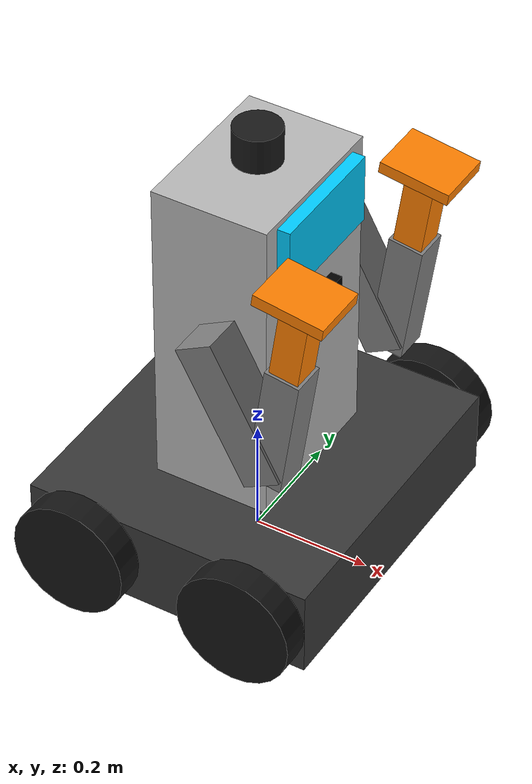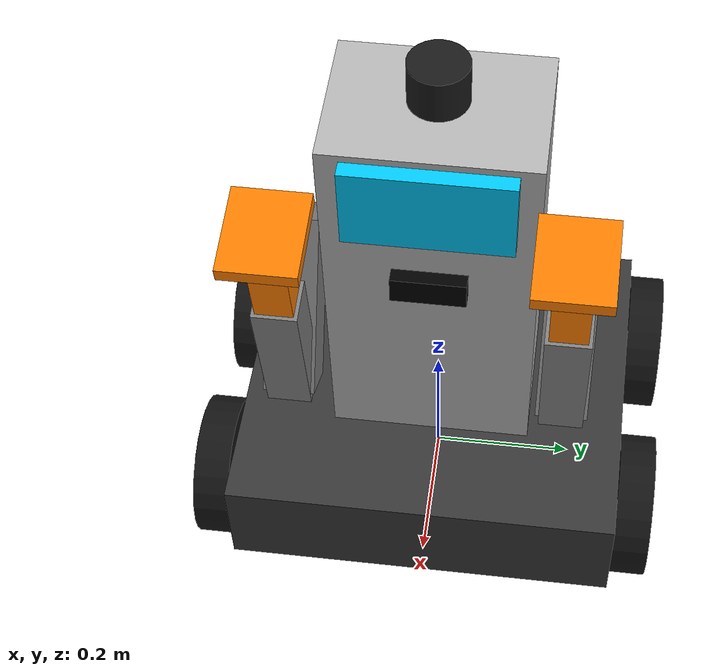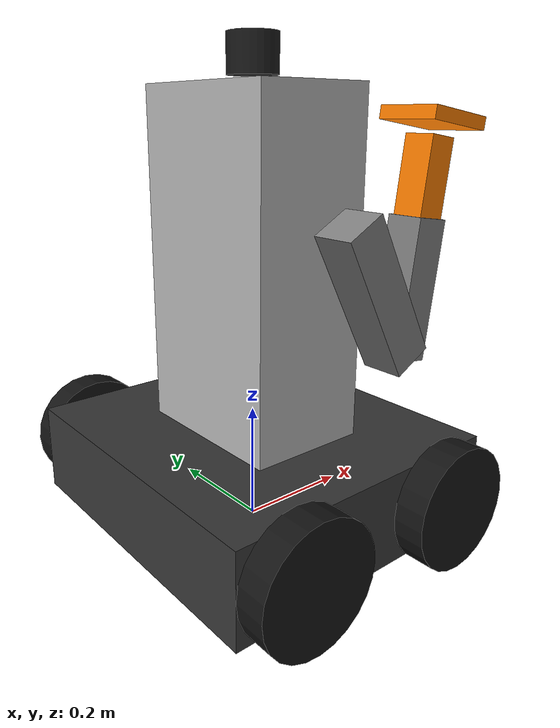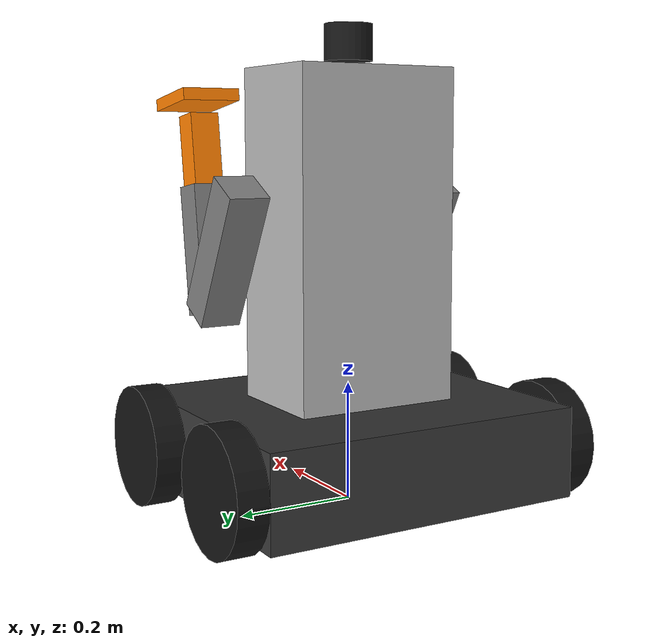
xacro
<?xml version="1.0"?>
<robot xmlns:xacro="http://www.ros.org/wiki/xacro" name="tidybot">

  <xacro:property name="PI" value="3.14159265359"/>

  <!-- ── Base ── -->
  <xacro:property name="base_length"  value="0.50"/>
  <xacro:property name="base_width"   value="0.55"/>
  <xacro:property name="base_height"  value="0.15"/>
  <xacro:property name="base_mass"    value="30.0"/>

  <!-- ── Wheels ── -->
  <xacro:property name="wheel_radius" value="0.10"/>
  <xacro:property name="wheel_width"  value="0.05"/>
  <xacro:property name="wheel_mass"   value="0.5"/>
  <!-- wheel joints placed at outer edge of base -->
  <xacro:property name="wheel_x_front" value="0.15"/>
  <xacro:property name="wheel_x_rear"  value="-0.15"/>
  <xacro:property name="wheel_y"       value="0.30"/>

  <!-- ── Torso ── -->
  <xacro:property name="torso_width"  value="0.28"/>
  <xacro:property name="torso_depth"  value="0.20"/>
  <xacro:property name="torso_height" value="0.55"/>
  <xacro:property name="torso_mass"   value="5.0"/>

  <!-- ── Right arm segments ── -->
  <xacro:property name="ua_len"   value="0.25"/>
  <xacro:property name="ua_w"     value="0.07"/>
  <xacro:property name="ua_mass"  value="1.0"/>

  <xacro:property name="fa_len"   value="0.22"/>
  <xacro:property name="fa_w"     value="0.06"/>
  <xacro:property name="fa_mass"  value="0.7"/>

  <xacro:property name="hand_len"  value="0.12"/>
  <xacro:property name="hand_w"    value="0.05"/>
  <xacro:property name="hand_mass" value="0.25"/>

  <!-- ============================================================
       INERTIA MACROS  (physically plausible)
  ============================================================ -->
  <xacro:macro name="box_inertia" params="m x y z">
    <inertial>
      <mass value="${m}"/>
      <inertia
        ixx="${m/12.0*(y*y + z*z)}" ixy="0" ixz="0"
        iyy="${m/12.0*(x*x + z*z)}" iyz="0"
        izz="${m/12.0*(x*x + y*y)}"/>
    </inertial>
  </xacro:macro>

  <xacro:macro name="cylinder_inertia" params="m r h">
    <inertial>
      <mass value="${m}"/>
      <inertia
        ixx="${m/12.0*(3.0*r*r + h*h)}" ixy="0" ixz="0"
        iyy="${m/12.0*(3.0*r*r + h*h)}" iyz="0"
        izz="${m/2.0*r*r}"/>
    </inertial>
  </xacro:macro>

  <!-- ============================================================
       BASE
  ============================================================ -->
  <!-- base_footprint sits on the ground; base_link is at wheel-centre height -->
  <link name="base_footprint"/>

  <joint name="base_joint" type="fixed">
    <parent link="base_footprint"/>
    <child  link="base_link"/>
    <origin xyz="0 0 ${wheel_radius}" rpy="0 0 0"/>
  </joint>

  <link name="base_link">
    <xacro:box_inertia m="${base_mass}" x="${base_length}" y="${base_width}" z="${base_height}"/>
    <visual>
      <origin xyz="0 0 0" rpy="0 0 0"/>
      <geometry><box size="${base_length} ${base_width} ${base_height}"/></geometry>
      <material name="dark_grey"><color rgba="0.22 0.22 0.22 1.0"/></material>
    </visual>
    <!-- Collision cylinder covers entire robot footprint for smooth
         contact response at all angles (avoids box-corner blow-ups). -->
    <collision name="base_bumper">
      <origin xyz="0 0 0.25" rpy="0 0 0"/>
      <geometry><cylinder radius="0.35" length="0.60"/></geometry>
    </collision>
  </link>

  <!-- ============================================================
       WHEELS  (macro instantiated 4×)
  ============================================================ -->
  <xacro:macro name="wheel" params="name x_pos y_pos">

    <link name="${name}">
      <xacro:cylinder_inertia m="${wheel_mass}" r="${wheel_radius}" h="${wheel_width}"/>
      <visual>
        <origin xyz="0 0 0" rpy="${PI/2} 0 0"/>
        <geometry><cylinder radius="${wheel_radius}" length="${wheel_width}"/></geometry>
        <material name="black"><color rgba="0.08 0.08 0.08 1.0"/></material>
      </visual>
      <collision>
        <origin xyz="0 0 0" rpy="${PI/2} 0 0"/>
        <geometry><cylinder radius="${wheel_radius}" length="${wheel_width}"/></geometry>
      </collision>
    </link>

    <joint name="${name}_joint" type="continuous">
      <parent link="base_link"/>
      <child  link="${name}"/>
      <origin xyz="${x_pos} ${y_pos} 0" rpy="0 0 0"/>
      <axis xyz="0 1 0"/>
      <dynamics damping="1.0" friction="0.5"/>
      <limit effort="30.0" velocity="15.0"/>
    </joint>

    <gazebo reference="${name}">
      <mu1>1.5</mu1>
      <mu2>1.5</mu2>
      <kp>100000.0</kp>
      <kd>100.0</kd>
      <minDepth>0.002</minDepth>
      <maxVel>2.0</maxVel>
      <fdir1>1 0 0</fdir1>
      <material>Gazebo/Black</material>
    </gazebo>

  </xacro:macro>

  <xacro:wheel name="wheel_front_left"  x_pos="${wheel_x_front}" y_pos=" ${wheel_y}"/>
  <xacro:wheel name="wheel_front_right" x_pos="${wheel_x_front}" y_pos="-${wheel_y}"/>
  <xacro:wheel name="wheel_rear_left"   x_pos="${wheel_x_rear}"  y_pos=" ${wheel_y}"/>
  <xacro:wheel name="wheel_rear_right"  x_pos="${wheel_x_rear}"  y_pos="-${wheel_y}"/>

  <!-- ============================================================
       TORSO
  ============================================================ -->
  <joint name="torso_joint" type="fixed">
    <parent link="base_link"/>
    <child  link="torso_link"/>
    <!-- torso bottom sits on top of base -->
    <origin xyz="0 0 ${base_height/2}" rpy="0 0 0"/>
  </joint>

  <link name="torso_link">
    <xacro:box_inertia m="${torso_mass}" x="${torso_depth}" y="${torso_width}" z="${torso_height}"/>
    <!-- visual/collision origin at centre of torso box -->
    <visual>
      <origin xyz="0 0 ${torso_height/2}" rpy="0 0 0"/>
      <geometry><box size="${torso_depth} ${torso_width} ${torso_height}"/></geometry>
      <material name="light_grey"><color rgba="0.72 0.72 0.72 1.0"/></material>
    </visual>
    <!-- No separate torso collision — base_link cylinder covers the full body -->
  </link>

  <!-- ============================================================
       HEAD / FACE PANEL  (LED display, visual only)
  ============================================================ -->
  <joint name="face_joint" type="fixed">
    <parent link="torso_link"/>
    <child  link="face_link"/>
    <!-- on the front face, near the top of the torso -->
    <origin xyz="${torso_depth/2 + 0.011} 0 ${torso_height - 0.07}" rpy="0 0 0"/>
  </joint>

  <link name="face_link">
    <inertial>
      <mass value="0.08"/>
      <inertia ixx="0.00005" ixy="0" ixz="0" iyy="0.00005" iyz="0" izz="0.00005"/>
    </inertial>
    <visual>
      <origin xyz="0 0 0" rpy="0 0 0"/>
      <!-- flat rectangular LED panel: 22cm wide, 12cm tall, 2cm deep -->
      <geometry><box size="0.022 0.22 0.12"/></geometry>
      <material name="led_cyan"><color rgba="0.0 0.8 1.0 1.0"/></material>
    </visual>
    <collision>
      <origin xyz="0 0 0" rpy="0 0 0"/>
      <geometry><box size="0.022 0.22 0.12"/></geometry>
    </collision>
  </link>

  <!-- ============================================================
       CAMERA  (torso-mounted, forward-facing)
  ============================================================ -->
  <joint name="camera_joint" type="fixed">
    <parent link="torso_link"/>
    <child  link="camera_link"/>
    <!-- front of torso, 60 % up the torso height -->
    <origin xyz="${torso_depth/2} 0 ${torso_height*0.60}" rpy="0 0 0"/>
  </joint>

  <link name="camera_link">
    <inertial>
      <mass value="0.05"/>
      <inertia ixx="0.00001" ixy="0" ixz="0" iyy="0.00001" iyz="0" izz="0.00001"/>
    </inertial>
    <visual>
      <origin xyz="0 0 0" rpy="0 0 0"/>
      <geometry><box size="0.04 0.10 0.04"/></geometry>
      <material name="cam_black"><color rgba="0.0 0.0 0.0 1.0"/></material>
    </visual>
    <collision>
      <origin xyz="0 0 0" rpy="0 0 0"/>
      <geometry><box size="0.04 0.10 0.04"/></geometry>
    </collision>
  </link>

  <!-- optical frame (z forward, x right, y down) -->
  <joint name="camera_optical_joint" type="fixed">
    <parent link="camera_link"/>
    <child  link="camera_optical_link"/>
    <origin xyz="0 0 0" rpy="${-PI/2} 0 ${-PI/2}"/>
  </joint>
  <link name="camera_optical_link">
    <inertial>
      <mass value="0.001"/>
      <inertia ixx="0.0000001" ixy="0" ixz="0" iyy="0.0000001" iyz="0" izz="0.0000001"/>
    </inertial>
  </link>

  <!-- ============================================================
       LIDAR  (360°, torso-mounted, on top of torso)
  ============================================================ -->
  <joint name="lidar_joint" type="fixed">
    <parent link="torso_link"/>
    <child  link="lidar_link"/>
    <origin xyz="0 0 ${torso_height + 0.04}" rpy="0 0 0"/>
  </joint>

  <link name="lidar_link">
    <inertial>
      <mass value="0.12"/>
      <inertia ixx="0.0001" ixy="0" ixz="0" iyy="0.0001" iyz="0" izz="0.0001"/>
    </inertial>
    <visual>
      <origin xyz="0 0 0" rpy="0 0 0"/>
      <geometry><cylinder radius="0.04" length="0.06"/></geometry>
      <material name="lidar_blk"><color rgba="0.1 0.1 0.1 1.0"/></material>
    </visual>
    <collision>
      <origin xyz="0 0 0" rpy="0 0 0"/>
      <geometry><cylinder radius="0.04" length="0.06"/></geometry>
    </collision>
  </link>

  <!-- ============================================================
       IMU  (base-mounted)
  ============================================================ -->
  <joint name="imu_joint" type="fixed">
    <parent link="base_link"/>
    <child  link="imu_link"/>
    <origin xyz="0 0 0" rpy="0 0 0"/>
  </joint>

  <link name="imu_link">
    <inertial>
      <mass value="0.01"/>
      <inertia ixx="0.000001" ixy="0" ixz="0" iyy="0.000001" iyz="0" izz="0.000001"/>
    </inertial>
  </link>

  <!-- Shoulder joint (pre-rotated -0.5 rad) -->
  <joint name="shoulder_right_joint" type="revolute">
    <parent link="torso_link"/>
    <child  link="upper_arm_right"/>
    <!-- right side of torso at 65 % height -->
    <origin xyz="0.02 ${-(torso_width/2 + ua_w/2 + 0.01)} ${torso_height*0.65}" rpy="0 -0.5 0"/>
    <axis xyz="0 1 0"/>
    <limit lower="${-PI/2}" upper="${PI}" effort="60.0" velocity="2.0"/>
    <dynamics damping="50.0" friction="5.0"/>
  </joint>

  <link name="upper_arm_right">
    <xacro:box_inertia m="${ua_mass}" x="${ua_w}" y="${ua_w}" z="${ua_len}"/>
    <visual>
      <origin xyz="0 0 ${-ua_len/2}" rpy="0 0 0"/>
      <geometry><box size="${ua_w} ${ua_w} ${ua_len}"/></geometry>
      <material name="arm_grey"><color rgba="0.50 0.50 0.50 1.0"/></material>
    </visual>
    <collision>
      <origin xyz="0 0 ${-ua_len/2}" rpy="0 0 0"/>
      <geometry><box size="${ua_w} ${ua_w} ${ua_len}"/></geometry>
    </collision>
  </link>

  <!-- Elbow joint (pre-rotated -2.5 rad so joint=0 folds forearm UP) -->
  <joint name="elbow_right_joint" type="revolute">
    <parent link="upper_arm_right"/>
    <child  link="forearm_right"/>
    <origin xyz="0 0 ${-ua_len}" rpy="0 -2.5 0"/>
    <axis xyz="0 1 0"/>
    <limit lower="${-PI}" upper="${PI}" effort="40.0" velocity="2.5"/>
    <dynamics damping="50.0" friction="5.0"/>
  </joint>

  <link name="forearm_right">
    <xacro:box_inertia m="${fa_mass}" x="${fa_w}" y="${fa_w}" z="${fa_len}"/>
    <visual>
      <origin xyz="0 0 ${-fa_len/2}" rpy="0 0 0"/>
      <geometry><box size="${fa_w} ${fa_w} ${fa_len}"/></geometry>
      <material name="arm_grey"><color rgba="0.50 0.50 0.50 1.0"/></material>
    </visual>
    <collision>
      <origin xyz="0 0 ${-fa_len/2}" rpy="0 0 0"/>
      <geometry><box size="${fa_w} ${fa_w} ${fa_len}"/></geometry>
    </collision>
  </link>

  <!-- Wrist joint -->
  <joint name="wrist_right_joint" type="revolute">
    <parent link="forearm_right"/>
    <child  link="hand_right"/>
    <origin xyz="0 0 ${-fa_len}" rpy="0 0 0"/>
    <axis xyz="0 1 0"/>
    <limit lower="${-PI/2}" upper="${PI/2}" effort="20.0" velocity="3.0"/>
    <dynamics damping="30.0" friction="3.0"/>
  </joint>

  <link name="hand_right">
    <xacro:box_inertia m="${hand_mass}" x="${hand_w}" y="${hand_w}" z="${hand_len}"/>
    <visual>
      <origin xyz="0 0 ${-hand_len/2}" rpy="0 0 0"/>
      <geometry><box size="${hand_w} ${hand_w} ${hand_len}"/></geometry>
      <material name="orange"><color rgba="1.0 0.50 0.0 1.0"/></material>
    </visual>
    <collision>
      <origin xyz="0 0 ${-hand_len/2}" rpy="0 0 0"/>
      <geometry><box size="${hand_w} ${hand_w} ${hand_len}"/></geometry>
    </collision>
  </link>

  <!-- Gripper / scoop (magnetic end-effector modeled as flat scoop) -->
  <joint name="gripper_right_joint" type="fixed">
    <parent link="hand_right"/>
    <child  link="gripper_right"/>
    <origin xyz="0 0 ${-hand_len}" rpy="0 0 0"/>
  </joint>

  <link name="gripper_right">
    <inertial>
      <mass value="0.12"/>
      <inertia ixx="0.0001" ixy="0" ixz="0" iyy="0.0001" iyz="0" izz="0.0001"/>
    </inertial>
    <visual>
      <origin xyz="0 0 -0.025" rpy="0 0 0"/>
      <!-- wide flat scoop plate -->
      <geometry><box size="0.12 0.10 0.02"/></geometry>
      <material name="orange"><color rgba="1.0 0.50 0.0 1.0"/></material>
    </visual>
    <collision>
      <origin xyz="0 0 -0.025" rpy="0 0 0"/>
      <geometry><box size="0.12 0.10 0.02"/></geometry>
    </collision>
  </link>

  <joint name="shoulder_left_joint" type="fixed">
    <parent link="torso_link"/>
    <child  link="upper_arm_left"/>
    <origin xyz="0.02 ${torso_width/2 + ua_w/2 + 0.01} ${torso_height*0.65}" rpy="0 -0.5 0"/>
  </joint>

  <link name="upper_arm_left">
    <xacro:box_inertia m="0.05" x="${ua_w}" y="${ua_w}" z="${ua_len}"/>
    <visual>
      <origin xyz="0 0 ${-ua_len/2}" rpy="0 0 0"/>
      <geometry><box size="${ua_w} ${ua_w} ${ua_len}"/></geometry>
      <material name="arm_grey"><color rgba="0.50 0.50 0.50 1.0"/></material>
    </visual>
    <collision>
      <origin xyz="0 0 ${-ua_len/2}" rpy="0 0 0"/>
      <geometry><box size="${ua_w} ${ua_w} ${ua_len}"/></geometry>
    </collision>
  </link>

  <joint name="elbow_left_joint" type="fixed">
    <parent link="upper_arm_left"/>
    <child  link="forearm_left"/>
    <origin xyz="0 0 ${-ua_len}" rpy="0 -2.5 0"/>
  </joint>

  <link name="forearm_left">
    <xacro:box_inertia m="0.03" x="${fa_w}" y="${fa_w}" z="${fa_len}"/>
    <visual>
      <origin xyz="0 0 ${-fa_len/2}" rpy="0 0 0"/>
      <geometry><box size="${fa_w} ${fa_w} ${fa_len}"/></geometry>
      <material name="arm_grey"><color rgba="0.50 0.50 0.50 1.0"/></material>
    </visual>
    <collision>
      <origin xyz="0 0 ${-fa_len/2}" rpy="0 0 0"/>
      <geometry><box size="${fa_w} ${fa_w} ${fa_len}"/></geometry>
    </collision>
  </link>

  <joint name="wrist_left_joint" type="fixed">
    <parent link="forearm_left"/>
    <child  link="hand_left"/>
    <origin xyz="0 0 ${-fa_len}" rpy="0 0 0"/>
  </joint>

  <link name="hand_left">
    <xacro:box_inertia m="0.02" x="${hand_w}" y="${hand_w}" z="${hand_len}"/>
    <visual>
      <origin xyz="0 0 ${-hand_len/2}" rpy="0 0 0"/>
      <geometry><box size="${hand_w} ${hand_w} ${hand_len}"/></geometry>
      <material name="orange"><color rgba="1.0 0.50 0.0 1.0"/></material>
    </visual>
    <collision>
      <origin xyz="0 0 ${-hand_len/2}" rpy="0 0 0"/>
      <geometry><box size="${hand_w} ${hand_w} ${hand_len}"/></geometry>
    </collision>
  </link>

  <!-- Left gripper (cosmetic, mirrors right) -->
  <joint name="gripper_left_joint" type="fixed">
    <parent link="hand_left"/>
    <child  link="gripper_left"/>
    <origin xyz="0 0 ${-hand_len}" rpy="0 0 0"/>
  </joint>

  <link name="gripper_left">
    <inertial>
      <mass value="0.01"/>
      <inertia ixx="0.000001" ixy="0" ixz="0" iyy="0.000001" iyz="0" izz="0.000001"/>
    </inertial>
    <visual>
      <origin xyz="0 0 -0.025" rpy="0 0 0"/>
      <geometry><box size="0.12 0.10 0.02"/></geometry>
      <material name="orange"><color rgba="1.0 0.50 0.0 1.0"/></material>
    </visual>
    <collision>
      <origin xyz="0 0 -0.025" rpy="0 0 0"/>
      <geometry><box size="0.12 0.10 0.02"/></geometry>
    </collision>
  </link>

  <!-- ============================================================
       GAZEBO PLUGINS
  ============================================================ -->

  <!-- Planar move plugin — directly applies cmd_vel to the base.
       No wheel PID, so it can't get stuck after collisions. -->
  <gazebo>
    <plugin name="gazebo_ros_planar_move" filename="libgazebo_ros_planar_move.so">
      <update_rate>50</update_rate>
      <command_topic>cmd_vel</command_topic>
      <odometry_topic>odom</odometry_topic>
      <odometry_frame>odom</odometry_frame>
      <robot_base_frame>base_footprint</robot_base_frame>
      <publish_odom>true</publish_odom>
      <publish_odom_tf>true</publish_odom_tf>
    </plugin>
  </gazebo>

  <!-- Joint state publisher (arm joints → /joint_states) -->
  <gazebo>
    <plugin name="gazebo_ros_joint_state_publisher"
            filename="libgazebo_ros_joint_state_publisher.so">
      <update_rate>50</update_rate>
      <joint_name>shoulder_right_joint</joint_name>
      <joint_name>elbow_right_joint</joint_name>
      <joint_name>wrist_right_joint</joint_name>
    </plugin>
  </gazebo>

  <!-- Joint trajectory controller for right arm position control -->
  <gazebo>
    <plugin name="gazebo_ros_joint_pose_trajectory"
            filename="libgazebo_ros_joint_pose_trajectory.so">
      <ros>
        <remapping>set_joint_trajectory:=set_joint_trajectory</remapping>
      </ros>
      <update_rate>50</update_rate>
      <frame_id>base_footprint</frame_id>
    </plugin>
  </gazebo>

  <!-- Forward camera on torso -->
  <gazebo reference="camera_link">
    <sensor type="camera" name="front_camera">
      <always_on>true</always_on>
      <update_rate>10.0</update_rate>
      <camera name="front_camera">
        <horizontal_fov>1.3962634</horizontal_fov>
        <image>
          <width>640</width>
          <height>480</height>
          <format>R8G8B8</format>
        </image>
        <clip><near>0.02</near><far>50.0</far></clip>
        <noise><type>gaussian</type><mean>0.0</mean><stddev>0.007</stddev></noise>
      </camera>
      <plugin name="camera_controller" filename="libgazebo_ros_camera.so">
        <ros>
          <remapping>image_raw:=camera/image_raw</remapping>
          <remapping>camera_info:=camera/camera_info</remapping>
        </ros>
        <camera_name>front_camera</camera_name>
        <frame_name>camera_optical_link</frame_name>
      </plugin>
    </sensor>
  </gazebo>

  <!-- 360° LiDAR on base -->
  <gazebo reference="lidar_link">
    <sensor type="ray" name="lidar_sensor">
      <always_on>true</always_on>
      <visualize>false</visualize>
      <update_rate>10.0</update_rate>
      <ray>
        <scan>
          <horizontal>
            <samples>720</samples>
            <resolution>1.0</resolution>
            <min_angle>${-PI}</min_angle>
            <max_angle>${PI}</max_angle>
          </horizontal>
        </scan>
        <range>
          <min>0.12</min>
          <max>8.0</max>
          <resolution>0.01</resolution>
        </range>
        <noise><type>gaussian</type><mean>0.0</mean><stddev>0.01</stddev></noise>
      </ray>
      <plugin name="lidar_controller" filename="libgazebo_ros_ray_sensor.so">
        <ros><remapping>~/out:=scan</remapping></ros>
        <output_type>sensor_msgs/LaserScan</output_type>
        <frame_name>lidar_link</frame_name>
      </plugin>
    </sensor>
  </gazebo>

  <!-- IMU on base -->
  <gazebo reference="imu_link">
    <sensor name="imu_sensor" type="imu">
      <always_on>true</always_on>
      <update_rate>100.0</update_rate>
      <plugin name="imu_controller" filename="libgazebo_ros_imu_sensor.so">
        <ros><remapping>~/out:=imu</remapping></ros>
        <initial_orientation_as_reference>false</initial_orientation_as_reference>
      </plugin>
    </sensor>
  </gazebo>

  <!-- Vacuum gripper on the right hand (suction-based pick-and-place) -->
  <gazebo>
    <plugin name="vacuum_gripper" filename="libgazebo_ros_vacuum_gripper.so">
      <ros>
        <namespace>/vacuum</namespace>
      </ros>
      <link_name>hand_right</link_name>
      <max_distance>3.0</max_distance>
      <!-- Do NOT attract furniture, walls, floor, or the collection box -->
      <fixed>ground_plane</fixed>
      <fixed>wall_west</fixed>
      <fixed>wall_north_r1</fixed>
      <fixed>wall_south_r1</fixed>
      <fixed>shared_wall_south</fixed>
      <fixed>shared_wall_north</fixed>
      <fixed>door_lintel</fixed>
      <fixed>wall_east</fixed>
      <fixed>wall_north_r2</fixed>
      <fixed>wall_south_r2</fixed>
      <fixed>table_r1</fixed>
      <fixed>chair_r1_a</fixed>
      <fixed>chair_r1_b</fixed>
      <fixed>couch_r1</fixed>
      <fixed>shelf_r1</fixed>
      <fixed>bed_r2</fixed>
      <fixed>nightstand_r2</fixed>
      <fixed>wardrobe_r2</fixed>
      <fixed>desk_r2</fixed>
      <fixed>chair_r2</fixed>
      <fixed>box_floor</fixed>
      <fixed>box_back</fixed>
      <fixed>box_front</fixed>
      <fixed>box_left</fixed>
      <fixed>box_right</fixed>
    </plugin>
  </gazebo>

  <!-- ============================================================
       CONTACT PROPERTIES — prevent solver blow-up on collision
  ============================================================ -->
  <xacro:macro name="safe_contact" params="link_name">
    <gazebo reference="${link_name}">
      <kp>100000.0</kp>
      <kd>100.0</kd>
      <minDepth>0.002</minDepth>
      <maxVel>2.0</maxVel>
    </gazebo>
  </xacro:macro>

  <xacro:safe_contact link_name="base_link"/>
  <xacro:safe_contact link_name="torso_link"/>
  <xacro:safe_contact link_name="face_link"/>
  <xacro:safe_contact link_name="upper_arm_right"/>
  <xacro:safe_contact link_name="forearm_right"/>
  <xacro:safe_contact link_name="hand_right"/>
  <xacro:safe_contact link_name="gripper_right"/>
  <xacro:safe_contact link_name="upper_arm_left"/>
  <xacro:safe_contact link_name="forearm_left"/>
  <xacro:safe_contact link_name="hand_left"/>
  <xacro:safe_contact link_name="gripper_left"/>

  <!-- Material overrides for Gazebo renderer -->
  <gazebo reference="base_link">  <material>Gazebo/DarkGrey</material></gazebo>
  <gazebo reference="torso_link"> <material>Gazebo/Grey</material></gazebo>
  <gazebo reference="face_link">  <material>Gazebo/Blue</material></gazebo>
  <gazebo reference="lidar_link"> <material>Gazebo/Black</material></gazebo>

</robot>
